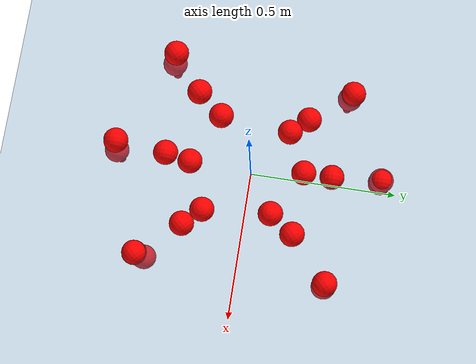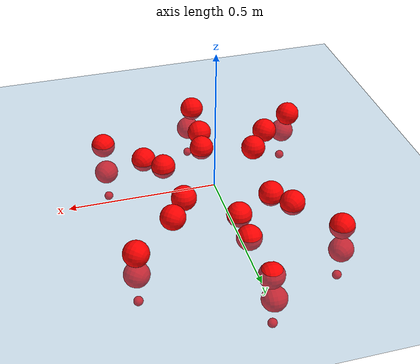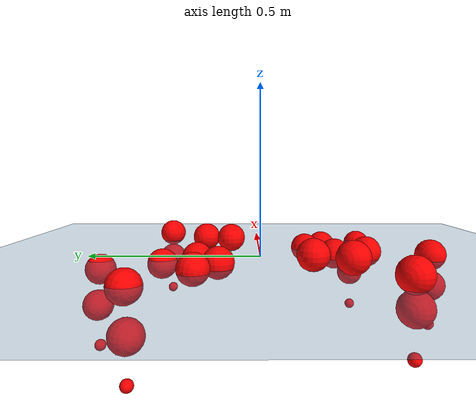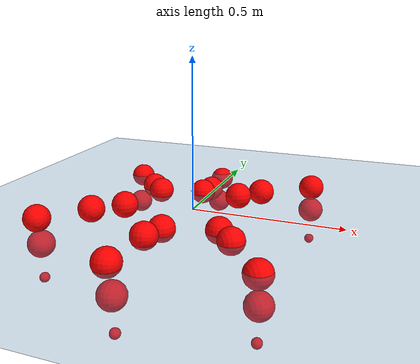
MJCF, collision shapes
<mujoco model="Golem">
  <compiler angle="radian" assetdir="assets" balanceinertia="true" inertiafromgeom="false"/>

  <option timestep="0.005" density="1.2" viscosity="2e-05"/>

  <size nkey="1"/>

  <visual>
    <quality shadowsize="8192"/>
    <map shadowclip="0.5"/>
  </visual>

  <default>
    <default class="/">
      <joint armature="0.01" damping="0.01" frictionloss="0.01"/>
      <geom contype="0" conaffinity="0" group="1" solref="-1000 -80"/>
      <site size="0.01 0.005 0.005" group="5"/>
      <general forcelimited="true" biastype="affine" gainprm="25" biasprm="0 -25 -0.5"/>
      <default class="visual">
        <geom type="mesh" group="2"/>
      </default>
      <default class="collision">
        <geom group="3"/>
      </default>
      <default class="foot">
        <geom size="0.01 0 0" condim="6" group="4" priority="1" solimp="0.015 1 0.01"/>
      </default>
      <default class="reward_collision_sphere">
        <geom group="5" rgba="1 0 0 1"/>
      </default>
    </default>
  </default>

  <asset>
    <texture type="skybox" colorspace="auto" name="//unnamed_texture_0" builtin="gradient" rgb1="0.95 0.95 0.95" rgb2="0.95 0.95 0.95" width="100" height="600"/>
    <texture type="2d" colorspace="auto" name="texplane" builtin="checker" rgb1="0.345 0.575 0.748" rgb2="0.345 0.575 0.748" markrgb="1 1 1" width="512" height="512"/>
    <material name="MatPlane" class="/" texture="texplane" texuniform="true" texrepeat="2 2" specular="0.9"/>
    <mesh name="body" class="/" file="body.stl" scale="0.001 0.001 0.001"/>
    <mesh name="coxa" class="/" file="coxa.stl" scale="0.001 0.001 0.001"/>
    <mesh name="femur" class="/" file="femur.stl" scale="0.001 0.001 0.001"/>
    <mesh name="tibia" class="/" file="tibia.stl" scale="0.001 0.001 0.001"/>
    <mesh name="tarsus" class="/" file="tarsus.stl" scale="0.001 0.001 0.001"/>
  </asset>

  <worldbody>
    <geom name="floor" class="/" size="100 100 0.125" type="plane" group="0" material="MatPlane"/>
    <light name="toplight_shadow" class="/" pos="0 0 5" dir="0.0990148 0.0990148 -0.990148" type="directional" ambient="0.04 0.04 0.04" diffuse="0.55 0.55 0.55" specular="0.12 0.12 0.12"/>
    <light name="toplight_fill" class="/" pos="0 0 5" dir="0.0990148 0.0990148 -0.990148" type="directional" castshadow="false" ambient="0.04 0.04 0.04" diffuse="0.3 0.3 0.3" specular="0.08 0.08 0.08"/>
    <body name="trunk" pos="-0.0171605 -0.0120066 -0.0113281" quat="1 -0.000327836 0.000134082 0.000323534">
      <inertial pos="-0.00764775 -0.00643465 -0.00647809" quat="0.999872 0.0152337 -0.000518487 0.00495178" mass="4.63081" diaginertia="0.0183716 0.139481 0.000224812"/>
      <joint name="//unnamed_joint_0" type="free"/>
      <geom name="//unnamed_geom_1" class="/" pos="0 0 0.0301219" quat="1 0 0 0" type="mesh" rgba="0.9 0.9 0.9 1" mesh="body"/>
      <site name="imu" class="/" pos="0.0563408 -0.0790115 0.0064225" size="0.010701"/>
      <camera name="track" class="/" pos="0 -3.36148 0" quat="0.707107 0.707107 0 0" mode="trackcom"/>
      <camera name="ego_camera" class="/" pos="0.137659 0 0.0470655" quat="-0.5 -0.5 0.5 0.5"/>
      <body name="coxa_RR" pos="-0.187796 -0.13962 0.0474137" quat="0.382291 0.000773938 0.000492585 -0.924042">
        <inertial pos="0.002068 0.0178676 0.00998657" quat="0.997739 -0.0644151 -0.00430963 0.0186635" mass="0.275158" diaginertia="0.0142466 0.143893 0.000249388"/>
        <joint name="coxa_joint_RR" class="/" pos="0 0 0" axis="0.0104376 -0.0496082 -0.998714" stiffness="0.0793354" range="-3.11477 3.09855" armature="0.0180756" damping="0.0531582" frictionloss="0.0111828"/>
        <geom name="//unnamed_geom_2" class="/" type="mesh" rgba="0.2 0.2 0.2 1" mesh="coxa"/>
        <geom name="//unnamed_geom_3" class="reward_collision_sphere" size="0.0428042" pos="-0.0317674 0 0"/>
        <body name="femur_RR" pos="0.0795679 0.0108619 0.00586351" quat="0.500719 -0.500103 0.499874 0.499304">
          <inertial pos="0.0106454 0.00937075 0.00287952" quat="0.99914 -0.00608694 -0.0142748 -0.0384465" mass="0.237682" diaginertia="0.0129498 0.11753 0.000172346"/>
          <joint name="femur_joint_RR" class="/" pos="0 0 0" axis="0.0151189 -0.0364056 -0.999223" stiffness="0.0820116" range="-2.82601 3.40473" armature="0.0147662" damping="0.00269558" frictionloss="0.00263891"/>
          <geom name="//unnamed_geom_4" class="/" type="mesh" rgba="0.9 0.9 0.9 1" mesh="femur"/>
          <geom name="//unnamed_geom_5" class="reward_collision_sphere" size="0.0428042"/>
          <body name="tibia_RR" pos="0.0128009 -0.164936 -0.0180953" quat="-0.00322298 0.999961 0.00492334 0.00658767">
            <inertial pos="0.0157077 0.00658521 0.00101425" quat="0.999882 -0.00228445 0.0108552 0.0106302" mass="0.231504" diaginertia="0.0162542 0.169473 0.000307193"/>
            <joint name="tibia_joint_RR" class="/" pos="0 0 0" axis="-0.0206624 0.0746523 0.996996" stiffness="0.0129639" range="-3.34322 2.89327" armature="0.0139599" damping="0.0213423" frictionloss="0.010443"/>
            <geom name="//unnamed_geom_6" class="/" type="mesh" rgba="0.2 0.2 0.2 1" mesh="tibia"/>
            <geom name="//unnamed_geom_7" class="reward_collision_sphere" size="0.0428042"/>
            <body name="tarsus_RR" pos="0.0786333 -0.00458945 -0.0152565" quat="1 2.53349e-05 -9.57709e-06 0.000337327">
              <inertial pos="0.0479624 0.000537961 -0.0104868" quat="0.51652 0.47878 0.520029 0.483267" mass="0.248689" diaginertia="0.0116325 0.112863 0.000236117"/>
              <joint name="tarsus_joint_RR" class="/" pos="0 0 0" axis="0.00188228 -0.000577583 0.999998" range="-2.82757 2.8858" armature="0.0149092" damping="0.0174364" frictionloss="0.0164001"/>
              <geom name="//unnamed_geom_8" class="/" type="mesh" rgba="0.9 0.9 0.9 1" mesh="tarsus"/>
              <geom name="foot_1" class="foot" size="0.0115254" pos="0.118598 0 0" quat="0 -0.707107 0 0.707107"/>
              <geom name="//unnamed_geom_10" class="reward_collision_sphere" size="0.0428042"/>
              <geom name="//unnamed_geom_11" class="reward_collision_sphere" size="0.0160516" pos="0.113833 0 0"/>
              <site name="foot_1" class="foot" pos="0.118598 0 0" quat="0 -0.707107 0 0.707107" size="0.010701"/>
            </body>
          </body>
        </body>
      </body>
      <body name="coxa_RM" pos="0.00298099 -0.232712 0.0216955" quat="0.704971 0.00214875 -0.00504287 -0.709215">
        <inertial pos="-0.0136922 -0.000757393 0.0104034" quat="0.998671 0.00538237 0.0413185 0.0303163" mass="0.279314" diaginertia="0.0153648 0.165553 0.000195859"/>
        <joint name="coxa_joint_RM" class="/" pos="0 0 0" axis="0.0231353 0.025264 -0.999413" range="-2.95423 3.01001" armature="0.0112317" damping="0.072776" frictionloss="0.0208412"/>
        <geom name="//unnamed_geom_12" class="/" type="mesh" rgba="0.2 0.2 0.2 1" mesh="coxa"/>
        <geom name="//unnamed_geom_13" class="reward_collision_sphere" size="0.0428042" pos="-0.0317674 0 0"/>
        <body name="femur_RM" pos="0.0549349 -0.0150914 0.00863779" quat="0.499532 -0.494069 0.500441 0.505888">
          <inertial pos="-0.00719975 0.00975088 2.51882e-05" quat="0.998999 0.0265555 -0.0168664 0.0318001" mass="0.198622" diaginertia="0.0103725 0.123364 0.000174593"/>
          <joint name="femur_joint_RM" class="/" pos="0 0 0" axis="-0.0600585 0.00185029 -0.998193" range="-3.23105 3.16298" armature="0.0162576" damping="0" frictionloss="0.0107112"/>
          <geom name="//unnamed_geom_14" class="/" type="mesh" rgba="0.9 0.9 0.9 1" mesh="femur"/>
          <geom name="//unnamed_geom_15" class="reward_collision_sphere" size="0.0428042"/>
          <body name="tibia_RM" pos="0.0050269 -0.178226 -0.0176382" quat="-0.000241693 0.999998 0.00130496 0.00119856">
            <inertial pos="-0.0130381 0.0175987 -0.00293456" quat="0.996805 0.0439043 -0.0479585 0.0463901" mass="0.326647" diaginertia="0.0153135 0.115784 0.000276437"/>
            <joint name="tibia_joint_RM" class="/" pos="0 0 0" axis="0.00203893 8.6048e-05 0.999998" range="-2.81923 2.76165" armature="0.010899" damping="0.00376473" frictionloss="0.00687937"/>
            <geom name="//unnamed_geom_16" class="/" type="mesh" rgba="0.2 0.2 0.2 1" mesh="tibia"/>
            <geom name="//unnamed_geom_17" class="reward_collision_sphere" size="0.0428042"/>
            <body name="tarsus_RM" pos="0.0910877 0.00640815 -0.0127461" quat="1 0.000646076 0.000249065 0.000156702">
              <inertial pos="0.0566884 0.0128799 -0.0140216" quat="0.458367 0.452981 0.555335 0.525653" mass="0.192985" diaginertia="0.016042 0.155379 0.00027437"/>
              <joint name="tarsus_joint_RM" class="/" pos="0 0 0" axis="0.00409226 -0.0193104 0.999805" stiffness="0.0662017" range="-3.39017 3.29617" armature="0.00518805" damping="0.0115407" frictionloss="0.0118762"/>
              <geom name="//unnamed_geom_18" class="/" type="mesh" rgba="0.9 0.9 0.9 1" mesh="tarsus"/>
              <geom name="foot_2" class="foot" size="0.00762188" pos="0.118598 0 0" quat="0 -0.707107 0 0.707107"/>
              <geom name="//unnamed_geom_20" class="reward_collision_sphere" size="0.0428042"/>
              <geom name="//unnamed_geom_21" class="reward_collision_sphere" size="0.0160516" pos="0.113833 0 0"/>
              <site name="foot_2" class="foot" pos="0.118598 0 0" quat="0 -0.707107 0 0.707107" size="0.010701"/>
            </body>
          </body>
        </body>
      </body>
      <body name="coxa_RF" pos="0.184701 -0.156868 0.0143962" quat="0.924214 0.000775233 0.00150431 -0.381871">
        <inertial pos="0.00834363 -0.011487 -0.00330034" quat="0.999995 -0.000745223 0.000409103 -0.00287939" mass="0.227687" diaginertia="0.0131824 0.110112 0.000240251"/>
        <joint name="coxa_joint_RF" class="/" pos="0 0 0" axis="-0.019267 -0.00369184 -0.999808" range="-3.20443 2.99025" armature="0.00251228" damping="0" frictionloss="0.00848905"/>
        <geom name="//unnamed_geom_22" class="/" type="mesh" rgba="0.2 0.2 0.2 1" mesh="coxa"/>
        <geom name="//unnamed_geom_23" class="reward_collision_sphere" size="0.0428042" pos="-0.0317674 0 0"/>
        <body name="femur_RF" pos="0.05206 -0.002414 -0.000470406" quat="0.500253 -0.50314 0.496794 0.499793">
          <inertial pos="-0.00972401 0.0126491 -0.00339702" quat="0.998761 0.0326886 -1.26654e-05 0.0375147" mass="0.275188" diaginertia="0.0130837 0.175034 0.000207489"/>
          <joint name="femur_joint_RF" class="/" pos="0 0 0" axis="-0.00427606 -0.00193097 -0.999989" range="-2.78968 2.97122" armature="0.019714" damping="0.0187359" frictionloss="0.00303542"/>
          <geom name="//unnamed_geom_24" class="/" type="mesh" rgba="0.9 0.9 0.9 1" mesh="femur"/>
          <geom name="//unnamed_geom_25" class="reward_collision_sphere" size="0.0428042"/>
          <body name="tibia_RF" pos="0.0143809 -0.18782 -0.0181415" quat="-0.00108716 0.999999 -0.000360417 -0.000990422">
            <inertial pos="0.0179877 0.00401047 0.00674492" quat="1 -0.000794954 -0.00026139 0.000114313" mass="0.177805" diaginertia="0.0139987 0.103569 0.000200569"/>
            <joint name="tibia_joint_RF" class="/" pos="0 0 0" axis="-0.0291915 -0.0824829 0.996165" range="-2.98867 3.49138" armature="0.0151365" damping="0.0102736" frictionloss="0.0106942"/>
            <geom name="//unnamed_geom_26" class="/" type="mesh" rgba="0.2 0.2 0.2 1" mesh="tibia"/>
            <geom name="//unnamed_geom_27" class="reward_collision_sphere" size="0.0428042"/>
            <body name="tarsus_RF" pos="0.104958 -0.0165261 -0.0152803" quat="0.999964 0.00135558 -0.00749191 -0.00364249">
              <inertial pos="0.06374 -0.00664128 -0.00317775" quat="0.496945 0.513878 0.498685 0.490193" mass="0.256547" diaginertia="0.0121285 0.143717 0.000194603"/>
              <joint name="tarsus_joint_RF" class="/" pos="0 0 0" axis="0.00787082 -0.0610749 0.998102" stiffness="0.0469941" range="-2.94979 3.28753" armature="0.00472941" damping="0" frictionloss="0.0165613"/>
              <geom name="//unnamed_geom_28" class="/" type="mesh" rgba="0.9 0.9 0.9 1" mesh="tarsus"/>
              <geom name="foot_3" class="foot" size="0.00511212" pos="0.118598 0 0" quat="0 -0.707107 0 0.707107"/>
              <geom name="//unnamed_geom_30" class="reward_collision_sphere" size="0.0428042"/>
              <geom name="//unnamed_geom_31" class="reward_collision_sphere" size="0.0160516" pos="0.113833 0 0"/>
              <site name="foot_3" class="foot" pos="0.118598 0 0" quat="0 -0.707107 0 0.707107" size="0.010701"/>
            </body>
          </body>
        </body>
      </body>
      <body name="coxa_LR" pos="-0.170748 0.147796 0.0246361" quat="0.381274 -0.000602652 -0.00185725 0.92446">
        <inertial pos="0.0166374 -0.0109519 0.0185288" quat="0.996111 -0.0385179 0.0791029 -0.00468822" mass="0.236603" diaginertia="0.0106093 0.0851585 0.000171221"/>
        <joint name="coxa_joint_LR" class="/" pos="0 0 0" axis="0.0632728 0.0561038 -0.996418" range="-2.98143 3.36418" armature="0.0170849" damping="0.039589" frictionloss="0.0185371"/>
        <geom name="//unnamed_geom_32" class="/" type="mesh" rgba="0.2 0.2 0.2 1" mesh="coxa"/>
        <geom name="//unnamed_geom_33" class="reward_collision_sphere" size="0.0428042" pos="-0.0317674 0 0"/>
        <body name="femur_LR" pos="0.048689 -0.00353078 -0.00543221" quat="0.49944 -0.50049 0.500699 0.49937">
          <inertial pos="0.00933224 -0.00460853 0.00466055" quat="0.998339 0.0087027 0.0389613 0.0415346" mass="0.244297" diaginertia="0.01249 0.105441 0.000234687"/>
          <joint name="femur_joint_LR" class="/" pos="0 0 0" axis="-0.0521078 -0.0307061 0.998169" range="-3.30303 3.22135" armature="0.00748783" damping="0" frictionloss="0.0203962"/>
          <geom name="//unnamed_geom_34" class="/" type="mesh" rgba="0.9 0.9 0.9 1" mesh="femur"/>
          <geom name="//unnamed_geom_35" class="reward_collision_sphere" size="0.0428042"/>
          <body name="tibia_LR" pos="0.0139777 -0.183736 -0.0157182" quat="0.00202346 0.999966 0.00105604 -0.00786963">
            <inertial pos="-0.00376075 -0.00374029 -0.000847871" quat="0.999552 0.0187235 0.00449081 -0.0229189" mass="0.189046" diaginertia="0.0109621 0.127522 0.000212452"/>
            <joint name="tibia_joint_LR" class="/" pos="0 0 0" axis="-0.0526703 -0.0231124 -0.998344" range="-2.91769 3.43058" armature="0.0128386" damping="0.0318133" frictionloss="0.0084055"/>
            <geom name="//unnamed_geom_36" class="/" type="mesh" rgba="0.2 0.2 0.2 1" mesh="tibia"/>
            <geom name="//unnamed_geom_37" class="reward_collision_sphere" size="0.0428042"/>
            <body name="tarsus_LR" pos="0.108981 0.00389254 -0.0143316" quat="0.999964 -0.00428696 -0.00359037 -0.00634362">
              <inertial pos="0.0455479 0.000742853 0.0178639" quat="0.496996 0.494536 0.50207 0.506315" mass="0.2535" diaginertia="0.0116376 0.140376 0.000217444"/>
              <joint name="tarsus_joint_LR" class="/" pos="0 0 0" axis="0.00034084 0.0797113 -0.996818" stiffness="0.0168567" range="-2.83533 3.44312" armature="0.00819218" damping="0.0489314" frictionloss="0.00592277"/>
              <geom name="//unnamed_geom_38" class="/" type="mesh" rgba="0.9 0.9 0.9 1" mesh="tarsus"/>
              <geom name="foot_4" class="foot" size="0.00593093" pos="0.118598 0 0" quat="0.707107 0 -0.707107 0"/>
              <geom name="//unnamed_geom_40" class="reward_collision_sphere" size="0.0428042"/>
              <geom name="//unnamed_geom_41" class="reward_collision_sphere" size="0.0160516" pos="0.113833 0 0"/>
              <site name="foot_4" class="foot" pos="0.118598 0 0" quat="0.707107 0 -0.707107 0" size="0.010701"/>
            </body>
          </body>
        </body>
      </body>
      <body name="coxa_LM" pos="-0.014473 0.223764 0.0148055" quat="0.709867 -0.00198574 -0.00291594 0.704327">
        <inertial pos="-0.0075814 0.00892873 -0.00128845" quat="0.997998 -0.0357388 -0.0517478 0.00671223" mass="0.270582" diaginertia="0.0169271 0.139297 0.00025937"/>
        <joint name="coxa_joint_LM" class="/" pos="0 0 0" axis="-0.0195013 0.01992 -0.999611" stiffness="0.0622811" range="-3.44189 3.06112" armature="0.00490515" damping="0" frictionloss="0.00290915"/>
        <geom name="//unnamed_geom_42" class="/" type="mesh" rgba="0.2 0.2 0.2 1" mesh="coxa"/>
        <geom name="//unnamed_geom_43" class="reward_collision_sphere" size="0.0428042" pos="-0.0317674 0 0"/>
        <body name="femur_LM" pos="0.0666719 0.00365536 -0.0177168" quat="0.497419 -0.498504 0.498244 0.505787">
          <inertial pos="-0.0106288 0.0152001 -0.0183269" quat="0.996355 0.0352929 -0.0604256 -0.0487812" mass="0.219674" diaginertia="0.0103437 0.149596 0.000184317"/>
          <joint name="femur_joint_LM" class="/" pos="0 0 0" axis="-0.0232604 -0.0583699 0.998024" range="-3.15489 3.43335" armature="0.00497574" damping="0" frictionloss="0.00987047"/>
          <geom name="//unnamed_geom_44" class="/" type="mesh" rgba="0.9 0.9 0.9 1" mesh="femur"/>
          <geom name="//unnamed_geom_45" class="reward_collision_sphere" size="0.0428042"/>
          <body name="tibia_LM" pos="0.0112969 -0.171015 0.0156123" quat="-0.00615249 0.999958 0.00641234 0.00228191">
            <inertial pos="-0.00685965 0.018961 -0.00851413" quat="0.997944 0.00220043 -0.000951556 0.0640405" mass="0.274414" diaginertia="0.0119222 0.107724 0.000206916"/>
            <joint name="tibia_joint_LM" class="/" pos="0 0 0" axis="0.00125387 -0.00649417 -0.999978" stiffness="0.0148936" range="-3.1846 2.97193" armature="0.00283317" damping="0.0914708" frictionloss="0.0167442"/>
            <geom name="//unnamed_geom_46" class="/" type="mesh" rgba="0.2 0.2 0.2 1" mesh="tibia"/>
            <geom name="//unnamed_geom_47" class="reward_collision_sphere" size="0.0428042"/>
            <body name="tarsus_LM" pos="0.0987214 0.0067145 -0.0124503" quat="0.999955 -0.00219698 0.00493447 -0.00774795">
              <inertial pos="0.0768408 0.00322733 0.0112414" quat="0.497842 0.49967 0.500607 0.501872" mass="0.251713" diaginertia="0.0182941 0.178923 0.000234469"/>
              <joint name="tarsus_joint_LM" class="/" pos="0 0 0" axis="-0.00100906 0.00704151 -0.999975" stiffness="0.000988165" range="-3.50411 2.991" armature="0.00234183" damping="0.103015" frictionloss="0.00556315"/>
              <geom name="//unnamed_geom_48" class="/" type="mesh" rgba="0.9 0.9 0.9 1" mesh="tarsus"/>
              <geom name="foot_5" class="foot" size="0.00698498" pos="0.118598 0 0" quat="0.707107 0 -0.707107 0"/>
              <geom name="//unnamed_geom_50" class="reward_collision_sphere" size="0.0428042"/>
              <geom name="//unnamed_geom_51" class="reward_collision_sphere" size="0.0160516" pos="0.113833 0 0"/>
              <site name="foot_5" class="foot" pos="0.118598 0 0" quat="0.707107 0 -0.707107 0" size="0.010701"/>
            </body>
          </body>
        </body>
      </body>
      <body name="coxa_LF" pos="0.170231 0.122284 0.0477004" quat="0.923565 0.00148207 -0.00137991 0.383436">
        <inertial pos="0.00421272 -0.00449213 0.00943156" quat="0.99781 -0.00259162 -0.0457 -0.0477574" mass="0.342574" diaginertia="0.0154197 0.158988 0.000301064"/>
        <joint name="coxa_joint_LF" class="/" pos="0 0 0" axis="0.0117359 -0.0179726 -0.99977" range="-2.93542 2.77614" armature="0.00292576" damping="0.100864" frictionloss="0.0176556"/>
        <geom name="//unnamed_geom_52" class="/" type="mesh" rgba="0.2 0.2 0.2 1" mesh="coxa"/>
        <geom name="//unnamed_geom_53" class="reward_collision_sphere" size="0.0428042" pos="-0.0317674 0 0"/>
        <body name="femur_LF" pos="0.0672307 0.0168763 -0.00502463" quat="0.506069 -0.501292 0.495 0.49757">
          <inertial pos="-0.0179406 -0.00112749 -0.00412582" quat="0.99926 -0.0232599 0.00275362 0.0305113" mass="0.290896" diaginertia="0.0145042 0.15206 0.000293986"/>
          <joint name="femur_joint_LF" class="/" pos="0 0 0" axis="0.00663944 -0.017558 0.999824" stiffness="0.0110841" range="-3.388 3.00877" armature="0.00287361" damping="0" frictionloss="0.014697"/>
          <geom name="//unnamed_geom_54" class="/" type="mesh" rgba="0.9 0.9 0.9 1" mesh="femur"/>
          <geom name="//unnamed_geom_55" class="reward_collision_sphere" size="0.0428042"/>
          <body name="tibia_LF" pos="0.00920887 -0.197871 -0.0123518" quat="-0.00214666 0.999997 0.000773467 -0.000290858">
            <inertial pos="8.29528e-05 -0.0138952 -0.0100997" quat="0.999211 -0.000191175 -0.0351646 -0.0184837" mass="0.279446" diaginertia="0.014774 0.127776 0.000229725"/>
            <joint name="tibia_joint_LF" class="/" pos="0 0 0" axis="-0.0162178 0.0253942 -0.999546" stiffness="0.0578237" range="-3.13439 3.05043" armature="0.0179258" damping="0.0712938" frictionloss="0.00483974"/>
            <geom name="//unnamed_geom_56" class="/" type="mesh" rgba="0.2 0.2 0.2 1" mesh="tibia"/>
            <geom name="//unnamed_geom_57" class="reward_collision_sphere" size="0.0428042"/>
            <body name="tarsus_LF" pos="0.0849945 0.00101274 0.00129636" quat="0.999963 0.00835636 0.0018604 -0.00037681">
              <inertial pos="0.0653611 -0.00348924 0.0106663" quat="0.482089 0.452374 0.540517 0.520374" mass="0.189518" diaginertia="0.0113515 0.0987691 0.000179799"/>
              <joint name="tarsus_joint_LF" class="/" pos="0 0 0" axis="-0.0442985 0.0312156 -0.998531" range="-2.85389 2.92598" armature="0.0112866" damping="0.100519" frictionloss="0.0129849"/>
              <geom name="//unnamed_geom_58" class="/" type="mesh" rgba="0.9 0.9 0.9 1" mesh="tarsus"/>
              <geom name="foot_6" class="foot" size="0.0107658" pos="0.118598 0 0" quat="0.707107 0 -0.707107 0"/>
              <geom name="//unnamed_geom_60" class="reward_collision_sphere" size="0.0428042"/>
              <geom name="//unnamed_geom_61" class="reward_collision_sphere" size="0.0160516" pos="0.113833 0 0"/>
              <site name="foot_6" class="foot" pos="0.118598 0 0" quat="0.707107 0 -0.707107 0" size="0.010701"/>
            </body>
          </body>
        </body>
      </body>
    </body>
  </worldbody>

  <contact>
    <pair class="/" geom1="floor" geom2="foot_1" name="//unnamed_contact_0"/>
    <pair class="/" geom1="floor" geom2="foot_2" name="//unnamed_contact_1"/>
    <pair class="/" geom1="floor" geom2="foot_3" name="//unnamed_contact_2"/>
    <pair class="/" geom1="floor" geom2="foot_4" name="//unnamed_contact_3"/>
    <pair class="/" geom1="floor" geom2="foot_5" name="//unnamed_contact_4"/>
    <pair class="/" geom1="floor" geom2="foot_6" name="//unnamed_contact_5"/>
  </contact>

  <actuator>
    <general name="coxa_joint_RR" class="/" joint="coxa_joint_RR" forcerange="-6.38631 6.38631" gainprm="21.5033" biasprm="0 -21.5033 -0.602943"/>
    <general name="femur_joint_RR" class="/" joint="femur_joint_RR" forcerange="-8.02635 8.02635" gainprm="21.5033" biasprm="0 -21.5033 -0.602943"/>
    <general name="tibia_joint_RR" class="/" joint="tibia_joint_RR" forcerange="-7.25694 7.25694" gainprm="21.5033" biasprm="0 -21.5033 -0.602943"/>
    <general name="tarsus_joint_RR" class="/" joint="tarsus_joint_RR" forcerange="-3.68159 3.68159" gainprm="21.5033" biasprm="0 -21.5033 -0.602943"/>
    <general name="coxa_joint_RM" class="/" joint="coxa_joint_RM" forcerange="-12.9772 12.9772" gainprm="21.5033" biasprm="0 -21.5033 -0.602943"/>
    <general name="femur_joint_RM" class="/" joint="femur_joint_RM" forcerange="-9.76035 9.76035" gainprm="21.5033" biasprm="0 -21.5033 -0.602943"/>
    <general name="tibia_joint_RM" class="/" joint="tibia_joint_RM" forcerange="-11.4212 11.4212" gainprm="21.5033" biasprm="0 -21.5033 -0.602943"/>
    <general name="tarsus_joint_RM" class="/" joint="tarsus_joint_RM" forcerange="-6.43447 6.43447" gainprm="21.5033" biasprm="0 -21.5033 -0.602943"/>
    <general name="coxa_joint_RF" class="/" joint="coxa_joint_RF" forcerange="-12.7319 12.7319" gainprm="21.5033" biasprm="0 -21.5033 -0.602943"/>
    <general name="femur_joint_RF" class="/" joint="femur_joint_RF" forcerange="-11.18 11.18" gainprm="21.5033" biasprm="0 -21.5033 -0.602943"/>
    <general name="tibia_joint_RF" class="/" joint="tibia_joint_RF" forcerange="-13.1375 13.1375" gainprm="21.5033" biasprm="0 -21.5033 -0.602943"/>
    <general name="tarsus_joint_RF" class="/" joint="tarsus_joint_RF" forcerange="-4.55887 4.55887" gainprm="21.5033" biasprm="0 -21.5033 -0.602943"/>
    <general name="coxa_joint_LR" class="/" joint="coxa_joint_LR" forcerange="-7.83718 7.83718" gainprm="21.5033" biasprm="0 -21.5033 -0.602943"/>
    <general name="femur_joint_LR" class="/" joint="femur_joint_LR" forcerange="-6.76712 6.76712" gainprm="21.5033" biasprm="0 -21.5033 -0.602943"/>
    <general name="tibia_joint_LR" class="/" joint="tibia_joint_LR" forcerange="-8.8534 8.8534" gainprm="21.5033" biasprm="0 -21.5033 -0.602943"/>
    <general name="tarsus_joint_LR" class="/" joint="tarsus_joint_LR" forcerange="-5.17786 5.17786" gainprm="21.5033" biasprm="0 -21.5033 -0.602943"/>
    <general name="coxa_joint_LM" class="/" joint="coxa_joint_LM" forcerange="-3.42318 3.42318" gainprm="21.5033" biasprm="0 -21.5033 -0.602943"/>
    <general name="femur_joint_LM" class="/" joint="femur_joint_LM" forcerange="-7.8307 7.8307" gainprm="21.5033" biasprm="0 -21.5033 -0.602943"/>
    <general name="tibia_joint_LM" class="/" joint="tibia_joint_LM" forcerange="-9.1531 9.1531" gainprm="21.5033" biasprm="0 -21.5033 -0.602943"/>
    <general name="tarsus_joint_LM" class="/" joint="tarsus_joint_LM" forcerange="-6.74563 6.74563" gainprm="21.5033" biasprm="0 -21.5033 -0.602943"/>
    <general name="coxa_joint_LF" class="/" joint="coxa_joint_LF" forcerange="-13.2305 13.2305" gainprm="21.5033" biasprm="0 -21.5033 -0.602943"/>
    <general name="femur_joint_LF" class="/" joint="femur_joint_LF" forcerange="-7.00311 7.00311" gainprm="21.5033" biasprm="0 -21.5033 -0.602943"/>
    <general name="tibia_joint_LF" class="/" joint="tibia_joint_LF" forcerange="-5.75901 5.75901" gainprm="21.5033" biasprm="0 -21.5033 -0.602943"/>
    <general name="tarsus_joint_LF" class="/" joint="tarsus_joint_LF" forcerange="-11.197 11.197" gainprm="21.5033" biasprm="0 -21.5033 -0.602943"/>
  </actuator>

  <sensor>
    <gyro site="imu" name="imu_angular_velocity"/>
    <velocimeter site="imu" name="imu_linear_velocity"/>
    <framelinvel objtype="site" objname="foot_1" name="foot_1_global_linear_velocity"/>
    <framelinvel objtype="site" objname="foot_2" name="foot_2_global_linear_velocity"/>
    <framelinvel objtype="site" objname="foot_3" name="foot_3_global_linear_velocity"/>
    <framelinvel objtype="site" objname="foot_4" name="foot_4_global_linear_velocity"/>
    <framelinvel objtype="site" objname="foot_5" name="foot_5_global_linear_velocity"/>
    <framelinvel objtype="site" objname="foot_6" name="foot_6_global_linear_velocity"/>
  </sensor>

  <keyframe>
    <key name="home" qpos="0 0 0.1457 1 0 0 0 0 0 0 0 0 0 0 0 0 0 0 0 0 0 0 0 0 0 0 0 0 0 0 0"/>
  </keyframe>
</mujoco>
